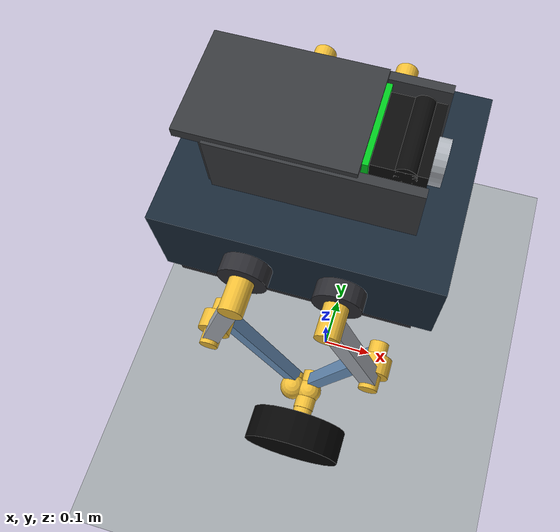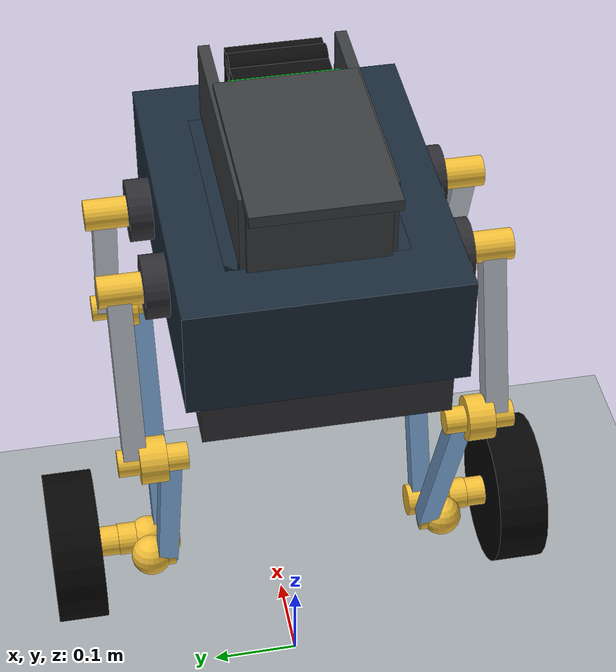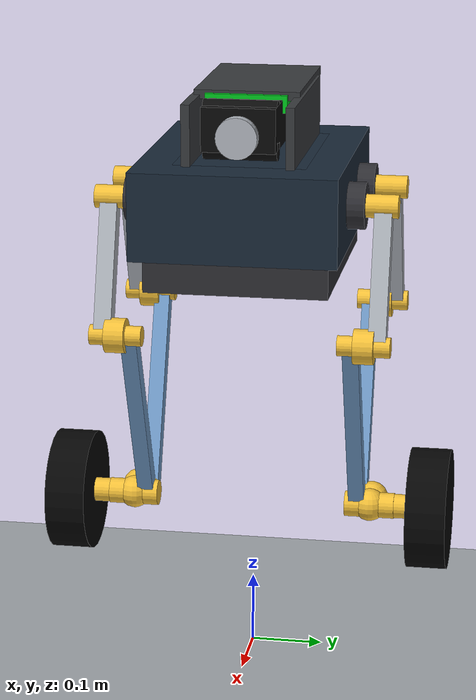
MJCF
<mujoco model="five_bar_biped_wheel_leg">
  <compiler angle="radian" autolimits="true"/>

  <option timestep="0.001" integrator="Euler" cone="elliptic" impratio="8" iterations="160" tolerance="1e-10"/>

  <visual>
    <quality shadowsize="4096"/>
    <headlight ambient="0.58 0.58 0.58" diffuse="0.72 0.72 0.72" specular="0.03 0.03 0.03"/>
  </visual>

  <default>
    <geom friction="1.0 0.02 0.001" solimp="0.9 0.95 0.001" solref="0.02 1"/>
    <joint damping="0.06" armature="0.008"/>
    <motor ctrllimited="true"/>
    <default class="drive_joint">
      <joint axis="0 1 0" range="-1.8 1.8"/>
      <motor gear="45" ctrlrange="-1 1"/>
    </default>
    <default class="passive_joint">
      <joint axis="0 1 0" range="-2.8 2.8" damping="0.18" stiffness="0.8" springref="0" armature="0.002"/>
    </default>
    <default class="wheel">
      <joint axis="0 1 0" damping="0.02" armature="0.002"/>
      <motor gear="12" ctrlrange="-1 1"/>
    </default>
    <default class="visual_only">
      <geom contype="0" conaffinity="0"/>
    </default>
    <default class="link_collision">
      <geom type="capsule" size="0.008" rgba="0.45 0.62 0.80 0" friction="0.8 0.01 0.001" contype="0" conaffinity="0"/>
    </default>
    <default class="hidden_collision">
      <geom rgba="0 0 0 0" friction="0.8 0.01 0.001" contype="2" conaffinity="0"/>
    </default>
  </default>

  <asset>
    <texture type="skybox" builtin="gradient" rgb1="0.72 0.78 0.84" rgb2="0.42 0.48 0.56" width="512" height="512"/>
    <texture name="grid" type="2d" builtin="checker" rgb1="0.66 0.68 0.70" rgb2="0.60 0.62 0.64" width="512" height="512"/>
    <material name="floor_mat" texture="grid" texrepeat="8 8" reflectance="0.0" specular="0.0" shininess="0.0"/>
    <material name="body_mat" rgba="0.10 0.16 0.22 1"/>
    <material name="upper_mat" rgba="0.70 0.72 0.75 1"/>
    <material name="lower_mat" rgba="0.45 0.62 0.80 1"/>
    <material name="joint_mat" rgba="0.95 0.75 0.22 1"/>
    <material name="carrier_mat" rgba="0.22 0.28 0.34 0.35"/>
    <material name="wheel_mat" rgba="0.02 0.02 0.02 1"/>
    <material name="motor_mat" rgba="0.18 0.18 0.20 1"/>
    <material name="front_mat" rgba="0.95 0.08 0.04 1"/>
    <material name="carbon_mat" rgba="0.22 0.23 0.24 1"/>
    <material name="green_cover_mat" rgba="0.00 0.80 0.12 1"/>
    <material name="launcher_black_mat" rgba="0.04 0.04 0.04 1"/>
    <material name="blue_rail_mat" rgba="0.05 0.12 0.95 1"/>
  </asset>

  <worldbody>
    <light pos="0 0 4" dir="0 0 -1" diffuse="0.75 0.75 0.75" ambient="0.45 0.45 0.45" specular="0.03 0.03 0.03" castshadow="false"/>
    <light pos="2 -3 3" dir="-0.4 0.6 -1" diffuse="0.28 0.28 0.28" ambient="0.12 0.12 0.12" specular="0.02 0.02 0.02" castshadow="false"/>
    <geom name="floor" type="plane" size="20 20 0.1" material="floor_mat" conaffinity="3"/>
    <body name="base" pos="0 0 0.72">
      <freejoint name="floating_base"/>
      <inertial pos="0 0 -0.05" mass="7.6" diaginertia="0.072 0.108 0.148"/>
      <geom name="base_box" type="box" pos="0 0 -0.05" size="0.18 0.14 0.06" material="body_mat"/>
      <geom name="battery_box" type="box" pos="0 0 -0.015" size="0.12 0.09 0.025" material="body_mat"/>
      <geom name="counterweight_box" class="visual_only" type="box" pos="-0.01 0 -0.134" size="0.165 0.125 0.024" material="motor_mat"/>
      <geom name="launcher_left_plate" class="visual_only" type="box" pos="0.005 0.070 0.048" size="0.125 0.006 0.045" material="carbon_mat"/>
      <geom name="launcher_right_plate" class="visual_only" type="box" pos="0.005 -0.070 0.048" size="0.125 0.006 0.045" material="carbon_mat"/>
      <geom name="launcher_rear_plate" class="visual_only" type="box" pos="-0.120 0 0.048" size="0.006 0.070 0.045" material="carbon_mat"/>
      <geom name="launcher_top_plate" class="visual_only" type="box" pos="-0.050 0 0.094" size="0.105 0.072 0.006" material="carbon_mat"/>
      <geom name="launcher_green_cover" class="visual_only" type="box" pos="-0.010 0 0.084" size="0.072 0.056 0.012" material="green_cover_mat"/>
      <geom name="launcher_black_body" class="visual_only" type="box" pos="0.072 0 0.060" size="0.055 0.050 0.030" material="launcher_black_mat"/>
      <geom name="launcher_muzzle" class="visual_only" type="cylinder" pos="0.132 0 0.052" size="0.028 0.010" euler="0 1.57079632679 0" material="upper_mat"/>
      <geom name="launcher_upper_roller" class="visual_only" type="cylinder" pos="0.102 0 0.083" size="0.014 0.050" euler="1.57079632679 0 0" material="launcher_black_mat"/>
      <geom name="launcher_lower_roller" class="visual_only" type="cylinder" pos="0.102 0 0.030" size="0.014 0.050" euler="1.57079632679 0 0" material="launcher_black_mat"/>
      <geom name="launcher_blue_rail" class="visual_only" type="box" pos="0.035 0 -0.005" size="0.095 0.010 0.006" material="blue_rail_mat"/>
      <geom name="launcher_left_post" class="visual_only" type="box" pos="-0.100 0.055 0.035" size="0.010 0.006 0.060" material="carbon_mat"/>
      <geom name="launcher_right_post" class="visual_only" type="box" pos="-0.100 -0.055 0.035" size="0.010 0.006 0.060" material="carbon_mat"/>

      <!-- Left five-bar leg. The two top joints are actuated; the two middle
           elbow joints are passive hinges; the lower links meet at the wheel carrier. -->
      <body name="left_front_upper" pos="0.06 0.17 -0.05">
        <joint name="left_front_drive" class="drive_joint"/>
        <geom name="left_front_motor_housing" class="visual_only" type="cylinder" pos="0 -0.018 0" size="0.032 0.012" euler="1.57079632679 0 0" material="motor_mat"/>
        <geom name="left_front_drive_spacer" class="visual_only" type="cylinder" pos="0 0.010 0" size="0.016 0.028" euler="1.57079632679 0 0" material="joint_mat" mass="0"/>
        <geom name="left_front_upper_collision" class="link_collision" fromto="0 0.018 0 0.06 0.018 -0.18"/>
        <geom name="left_front_upper_link" class="visual_only" type="box" fromto="0 0.018 0 0.06 0.018 -0.18" size="0.012 0.006 0.001" material="upper_mat"/>
        <body name="left_front_elbow" pos="0.06 0 -0.18">
          <joint name="left_front_elbow_joint" class="passive_joint"/>
          <geom name="left_front_elbow_collision" class="hidden_collision" type="sphere" size="0.026"/>
          <geom name="left_front_elbow_geom" class="visual_only" type="cylinder" size="0.024 0.014" euler="1.57079632679 0 0" material="joint_mat"/>
          <geom name="left_front_elbow_spacer" class="visual_only" type="cylinder" pos="0 0 0" size="0.014 0.036" euler="1.57079632679 0 0" material="joint_mat" mass="0"/>
          <geom name="left_front_lower_collision" class="link_collision" fromto="0 -0.018 0 -0.105 -0.018 -0.265"/>
          <geom name="left_front_lower_link" class="visual_only" type="box" fromto="0 -0.018 0 -0.105 -0.018 -0.265" size="0.011 0.005 0.001" material="lower_mat"/>
          <body name="left_front_hub" pos="-0.105 0 -0.265">
            <joint name="left_front_hub_joint" class="passive_joint"/>
            <geom name="left_front_hub_collision" class="hidden_collision" type="sphere" size="0.026"/>
            <geom name="left_front_hub_geom" class="visual_only" type="sphere" size="0.023" material="joint_mat"/>
            <geom name="left_front_hub_spacer" class="visual_only" type="cylinder" pos="0 -0.009 0" size="0.014 0.018" euler="1.57079632679 0 0" material="joint_mat" mass="0"/>
          <body name="left_carrier" pos="0 0 0">
            <site name="left_carrier_front_site" pos="0 0 0" size="0.004"/>
            <site name="left_carrier_site" pos="0 0 0" size="0.004"/>
            <site name="left_carrier_rear_site" pos="0 0 0" size="0.004"/>
            <geom name="left_carrier_collision" class="hidden_collision" type="cylinder" size="0.018 0.035" euler="1.57079632679 0 0"/>
            <geom name="left_carrier_axle_geom" class="visual_only" type="cylinder" size="0.018 0.035" euler="1.57079632679 0 0" material="joint_mat"/>
            <geom name="left_wheel_axle_extension" class="visual_only" type="cylinder" pos="0 0.046 0" size="0.017 0.012" euler="1.57079632679 0 0" material="joint_mat" mass="0"/>
            <body name="left_wheel" pos="0 0.085 0">
              <joint name="left_wheel_joint" class="wheel"/>
              <geom name="left_wheel_geom" type="cylinder" size="0.085 0.028" euler="1.57079632679 0 0" material="wheel_mat" mass="0.35"/>
            </body>
          </body>
          </body>
        </body>
      </body>
      <body name="left_rear_upper" pos="-0.06 0.17 -0.05">
        <joint name="left_rear_drive" class="drive_joint"/>
        <geom name="left_rear_motor_housing" class="visual_only" type="cylinder" pos="0 -0.018 0" size="0.032 0.012" euler="1.57079632679 0 0" material="motor_mat"/>
        <geom name="left_rear_drive_spacer" class="visual_only" type="cylinder" pos="0 0.010 0" size="0.016 0.028" euler="1.57079632679 0 0" material="joint_mat" mass="0"/>
        <geom name="left_rear_upper_collision" class="link_collision" fromto="0 0.018 0 -0.06 0.018 -0.18"/>
        <geom name="left_rear_upper_link" class="visual_only" type="box" fromto="0 0.018 0 -0.06 0.018 -0.18" size="0.012 0.006 0.001" material="upper_mat"/>
        <body name="left_rear_elbow" pos="-0.06 0 -0.18">
          <joint name="left_rear_elbow_joint" class="passive_joint"/>
          <geom name="left_rear_elbow_collision" class="hidden_collision" type="sphere" size="0.026"/>
          <geom name="left_rear_elbow_geom" class="visual_only" type="cylinder" size="0.024 0.014" euler="1.57079632679 0 0" material="joint_mat"/>
          <geom name="left_rear_elbow_spacer" class="visual_only" type="cylinder" pos="0 0 0" size="0.014 0.036" euler="1.57079632679 0 0" material="joint_mat" mass="0"/>
          <body name="left_rear_hub" pos="0.105 0 -0.265">
            <site name="left_rear_hub_site" pos="0 0 0" size="0.004"/>
            <geom name="left_rear_hub_collision" class="hidden_collision" type="sphere" size="0.026"/>
            <geom name="left_rear_hub_spacer" class="visual_only" type="cylinder" pos="0 -0.009 0" size="0.014 0.018" euler="1.57079632679 0 0" material="joint_mat" mass="0"/>
            <geom name="left_rear_lower_collision" class="link_collision" fromto="0 -0.018 0 -0.105 -0.018 0.265"/>
            <geom name="left_rear_lower_link" class="visual_only" type="box" fromto="0 -0.018 0 -0.105 -0.018 0.265" size="0.011 0.005 0.001" material="lower_mat"/>
            <geom name="left_rear_hub_marker" class="visual_only" type="sphere" size="0.023" material="joint_mat"/>
          </body>
        </body>
      </body>

      <!-- Right five-bar leg mirrors the left. -->
      <body name="right_front_upper" pos="0.06 -0.17 -0.05">
        <joint name="right_front_drive" class="drive_joint"/>
        <geom name="right_front_motor_housing" class="visual_only" type="cylinder" pos="0 0.018 0" size="0.032 0.012" euler="1.57079632679 0 0" material="motor_mat"/>
        <geom name="right_front_drive_spacer" class="visual_only" type="cylinder" pos="0 -0.010 0" size="0.016 0.028" euler="1.57079632679 0 0" material="joint_mat" mass="0"/>
        <geom name="right_front_upper_collision" class="link_collision" fromto="0 -0.018 0 0.06 -0.018 -0.18"/>
        <geom name="right_front_upper_link" class="visual_only" type="box" fromto="0 -0.018 0 0.06 -0.018 -0.18" size="0.012 0.006 0.001" material="upper_mat"/>
        <body name="right_front_elbow" pos="0.06 0 -0.18">
          <joint name="right_front_elbow_joint" class="passive_joint"/>
          <geom name="right_front_elbow_collision" class="hidden_collision" type="sphere" size="0.026"/>
          <geom name="right_front_elbow_geom" class="visual_only" type="cylinder" size="0.024 0.014" euler="1.57079632679 0 0" material="joint_mat"/>
          <geom name="right_front_elbow_spacer" class="visual_only" type="cylinder" pos="0 0 0" size="0.014 0.036" euler="1.57079632679 0 0" material="joint_mat" mass="0"/>
          <geom name="right_front_lower_collision" class="link_collision" fromto="0 0.018 0 -0.105 0.018 -0.265"/>
          <geom name="right_front_lower_link" class="visual_only" type="box" fromto="0 0.018 0 -0.105 0.018 -0.265" size="0.011 0.005 0.001" material="lower_mat"/>
          <body name="right_front_hub" pos="-0.105 0 -0.265">
            <joint name="right_front_hub_joint" class="passive_joint"/>
            <geom name="right_front_hub_collision" class="hidden_collision" type="sphere" size="0.026"/>
            <geom name="right_front_hub_geom" class="visual_only" type="sphere" size="0.023" material="joint_mat"/>
            <geom name="right_front_hub_spacer" class="visual_only" type="cylinder" pos="0 0.009 0" size="0.014 0.018" euler="1.57079632679 0 0" material="joint_mat" mass="0"/>
          <body name="right_carrier" pos="0 0 0">
            <site name="right_carrier_front_site" pos="0 0 0" size="0.004"/>
            <site name="right_carrier_site" pos="0 0 0" size="0.004"/>
            <site name="right_carrier_rear_site" pos="0 0 0" size="0.004"/>
            <geom name="right_carrier_collision" class="hidden_collision" type="cylinder" size="0.018 0.035" euler="1.57079632679 0 0"/>
            <geom name="right_carrier_axle_geom" class="visual_only" type="cylinder" size="0.018 0.035" euler="1.57079632679 0 0" material="joint_mat"/>
            <geom name="right_wheel_axle_extension" class="visual_only" type="cylinder" pos="0 -0.046 0" size="0.017 0.012" euler="1.57079632679 0 0" material="joint_mat" mass="0"/>
            <body name="right_wheel" pos="0 -0.085 0">
              <joint name="right_wheel_joint" class="wheel"/>
              <geom name="right_wheel_geom" type="cylinder" size="0.085 0.028" euler="1.57079632679 0 0" material="wheel_mat" mass="0.35"/>
            </body>
          </body>
          </body>
        </body>
      </body>
      <body name="right_rear_upper" pos="-0.06 -0.17 -0.05">
        <joint name="right_rear_drive" class="drive_joint"/>
        <geom name="right_rear_motor_housing" class="visual_only" type="cylinder" pos="0 0.018 0" size="0.032 0.012" euler="1.57079632679 0 0" material="motor_mat"/>
        <geom name="right_rear_drive_spacer" class="visual_only" type="cylinder" pos="0 -0.010 0" size="0.016 0.028" euler="1.57079632679 0 0" material="joint_mat" mass="0"/>
        <geom name="right_rear_upper_collision" class="link_collision" fromto="0 -0.018 0 -0.06 -0.018 -0.18"/>
        <geom name="right_rear_upper_link" class="visual_only" type="box" fromto="0 -0.018 0 -0.06 -0.018 -0.18" size="0.012 0.006 0.001" material="upper_mat"/>
        <body name="right_rear_elbow" pos="-0.06 0 -0.18">
          <joint name="right_rear_elbow_joint" class="passive_joint"/>
          <geom name="right_rear_elbow_collision" class="hidden_collision" type="sphere" size="0.026"/>
          <geom name="right_rear_elbow_geom" class="visual_only" type="cylinder" size="0.024 0.014" euler="1.57079632679 0 0" material="joint_mat"/>
          <geom name="right_rear_elbow_spacer" class="visual_only" type="cylinder" pos="0 0 0" size="0.014 0.036" euler="1.57079632679 0 0" material="joint_mat" mass="0"/>
          <body name="right_rear_hub" pos="0.105 0 -0.265">
            <site name="right_rear_hub_site" pos="0 0 0" size="0.004"/>
            <geom name="right_rear_hub_collision" class="hidden_collision" type="sphere" size="0.026"/>
            <geom name="right_rear_hub_spacer" class="visual_only" type="cylinder" pos="0 0.009 0" size="0.014 0.018" euler="1.57079632679 0 0" material="joint_mat" mass="0"/>
            <geom name="right_rear_lower_collision" class="link_collision" fromto="0 0.018 0 -0.105 0.018 0.265"/>
            <geom name="right_rear_lower_link" class="visual_only" type="box" fromto="0 0.018 0 -0.105 0.018 0.265" size="0.011 0.005 0.001" material="lower_mat"/>
            <geom name="right_rear_hub_marker" class="visual_only" type="sphere" size="0.023" material="joint_mat"/>
          </body>
        </body>
      </body>
    </body>
  </worldbody>

  <equality>
    <connect name="left_lower_loop" site1="left_rear_hub_site" site2="left_carrier_site" solref="0.001 1" solimp="0.995 0.999 0.0001"/>
    <connect name="right_lower_loop" site1="right_rear_hub_site" site2="right_carrier_site" solref="0.001 1" solimp="0.995 0.999 0.0001"/>
  </equality>

  <actuator>
    <motor name="left_front_motor" joint="left_front_drive" class="drive_joint"/>
    <motor name="left_rear_motor" joint="left_rear_drive" class="drive_joint"/>
    <motor name="left_wheel_motor" joint="left_wheel_joint" class="wheel"/>
    <motor name="right_front_motor" joint="right_front_drive" class="drive_joint"/>
    <motor name="right_rear_motor" joint="right_rear_drive" class="drive_joint"/>
    <motor name="right_wheel_motor" joint="right_wheel_joint" class="wheel"/>
  </actuator>
</mujoco>
